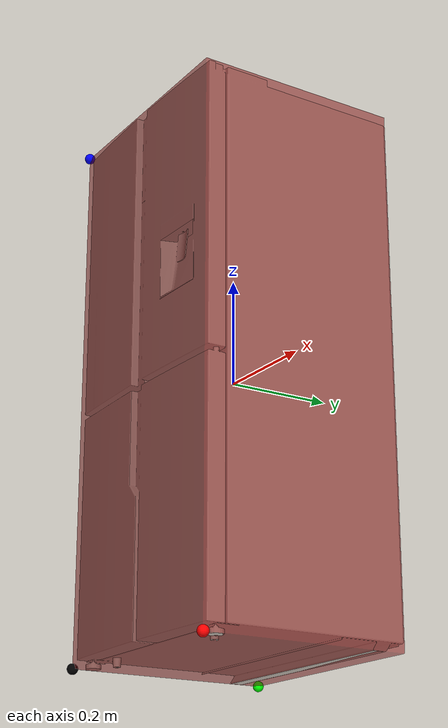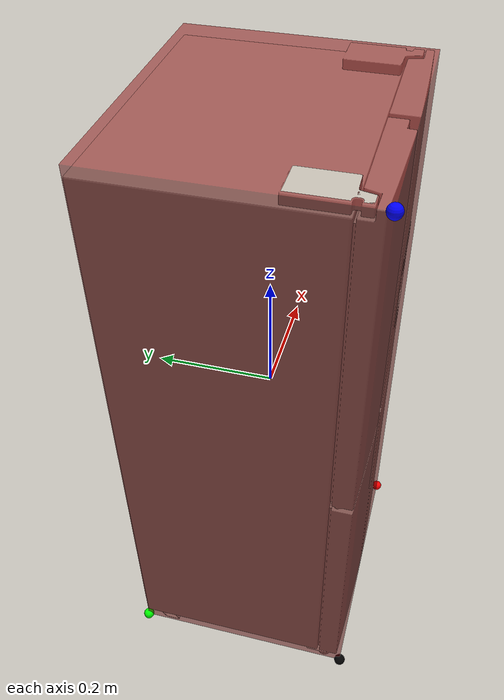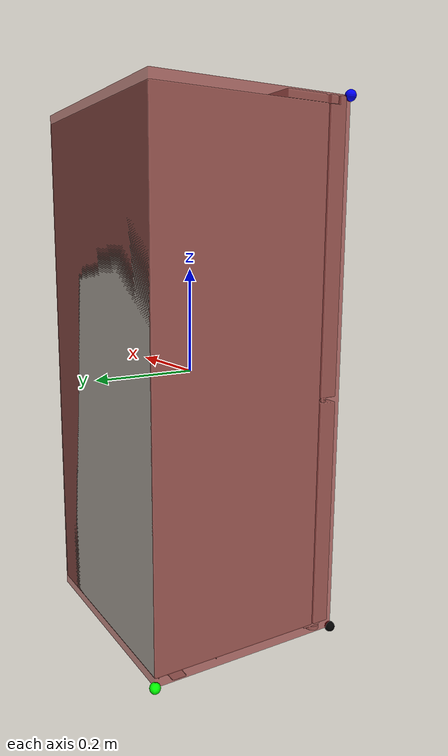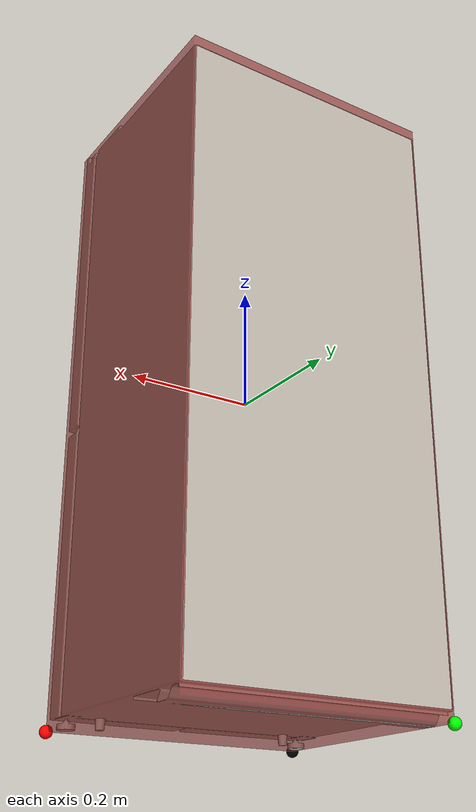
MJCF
<mujoco model="model">
  <compiler angle="radian"/>
  <asset>
    <texture file="visuals/material_0.png" name="fridge2-model" type="2d"/>
    <texture type="2d" name="fridge2_image0" file="visuals/image0.png"/>

    <material name="model" reflectance="0.5" texrepeat="1 1" texture="fridge2-model" texuniform="false"/>
    <material name="DefaultMaterial" texture="fridge2_image0" specular="0.5" shininess="0.25"/>
    <mesh file="visuals/model_0.obj" name="model_0_vis" scale="1 1 1"/>
  </asset>

  <default>
    <default class="visual">
      <geom conaffinity="0" contype="0" group="1" type="mesh"/>
    </default>
    <default class="collision">
      <geom group="0" rgba="0.5 0 0 0.5"/>
    </default>
  </default>
  <worldbody>
    <body>
      <!-- exterior bounding box points -->
      <site rgba="0 0 0 1" size="0.01" pos="-0.21929448170713242 -0.1945734416219195 -0.5" name="ext_p0"/>
      <site rgba="1 0 0 1" size="0.01" pos="0.21929448170713242 -0.1945734416219195 -0.5" name="ext_px"/>
      <site rgba="0 1 0 1" size="0.01" pos="-0.21929448170713242 0.1945734416219195 -0.5" name="ext_py"/>
      <site rgba="0 0 1 1" size="0.01" pos="-0.21929448170713242 -0.1945734416219195 0.5" name="ext_pz"/>
      <!-- interior bounding box points -->
      <body name="object">
        <geom solimp="0.998 0.998 0.001" solref="0.001 1" density="100" friction="0.95 0.3 0.1" type="mesh" mesh="model_0_vis" material="DefaultMaterial" class="visual"/>
        <geom class="collision" type="box" pos="0 0 0" size="0.21929448170713242 0.1945734416219195 0.5"/>
      </body>
    </body>
  </worldbody>
</mujoco>
